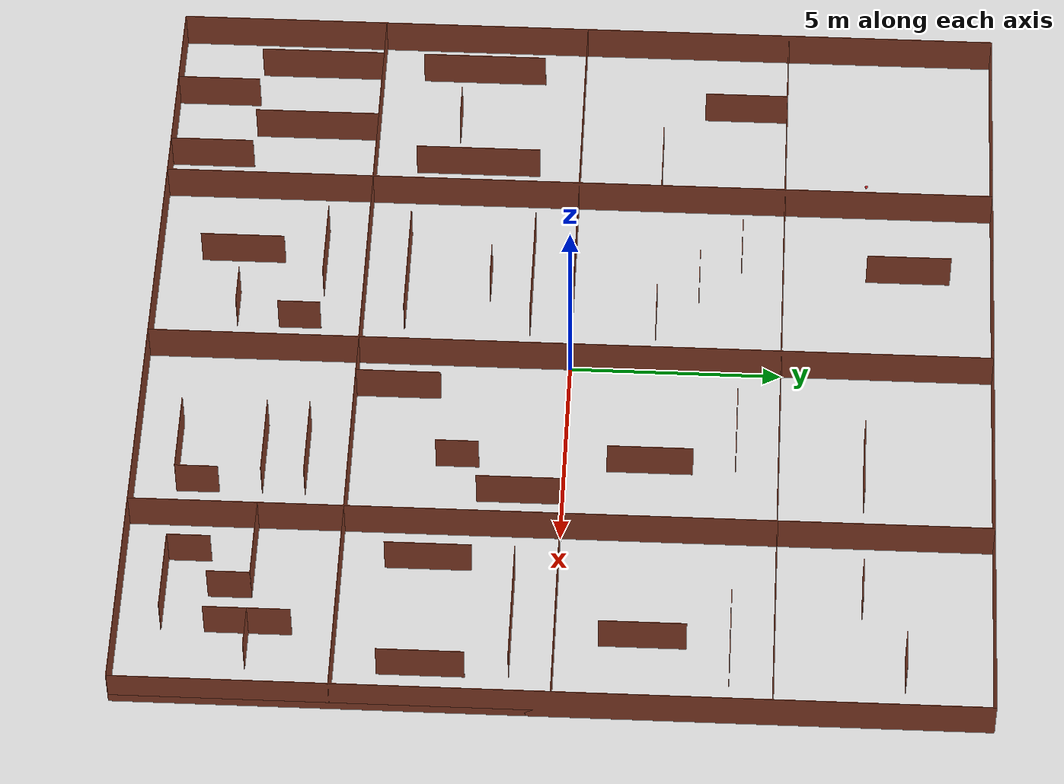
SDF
<sdf version="1.7">
 <world name="default">
  <light name="sun" type="directional">
   <pose>0 0 10 0 -0 0</pose>
   <diffuse>0.8 0.8 0.8 1</diffuse>
   <specular>0.2 0.2 0.2 1</specular>
   <attenuation>
    <range>1000</range>
    <constant>0.9</constant>
    <linear>0.01</linear>
    <quadratic>0.001</quadratic>
   </attenuation>
   <direction>-0.5 0.1 -0.9</direction>
   <spot><inner_angle>0</inner_angle><outer_angle>0</outer_angle><falloff>0</falloff></spot>
  </light>
  <model name="ground_plane">
   <static>1</static>
   <link name="link">
    <collision name="collision">
     <geometry><plane><normal>0 0 1</normal><size>100 100</size></plane></geometry>
     <surface>
      <contact><collide_bitmask>65535</collide_bitmask></contact>
      <friction><ode><mu>100</mu><mu2>50</mu2></ode></friction>
     </surface>
    </collision>
    <visual name="visual">
     <cast_shadows>0</cast_shadows>
     <geometry><plane><normal>0 0 1</normal><size>100 100</size></plane></geometry>
     <material>
      <script><uri>file://media/materials/scripts/gazebo.material</uri><name>Gazebo/Grey</name></script>
     </material>
    </visual>
   </link>
  </model>
  <gravity>0 0 -9.8</gravity>
  <magnetic_field>6e-06 2.3e-05 -4.2e-05</magnetic_field>
  <atmosphere type="adiabatic"/>
  <physics type="ode">
   <max_step_size>0.001</max_step_size>
   <real_time_factor>1</real_time_factor>
   <real_time_update_rate>1000</real_time_update_rate>
  </physics>
  <scene><ambient>0.4 0.4 0.4 1</ambient><background>0.7 0.7 0.7 1</background><shadows>1</shadows></scene>
  <spherical_coordinates>
   <surface_model>EARTH_WGS84</surface_model>
   <latitude_deg>0</latitude_deg>
   <longitude_deg>0</longitude_deg>
   <elevation>0</elevation>
   <heading_deg>0</heading_deg>
  </spherical_coordinates>
  <model name="cur_1.0">
   <link name="Wall_101">
    <collision name="Wall_101_Collision">
     <geometry><box><size>0.01 0.01 1</size></box></geometry>
     <pose>0 0 0.5 0 -0 0</pose>
    </collision>
    <visual name="Wall_101_Visual">
     <pose>0 0 0.5 0 -0 0</pose>
     <geometry><box><size>0.01 0.01 1</size></box></geometry>
     <material>
      <script><uri>file://media/materials/scripts/gazebo.material</uri><name>Gazebo/Bricks</name></script>
      <ambient>1 1 1 1</ambient>
     </material>
     <meta><layer>0</layer></meta>
    </visual>
    <pose>2 -9 0 0 -0 0</pose>
   </link>
   <link name="Wall_109">
    <collision name="Wall_109_Collision">
     <geometry><box><size>3.01 0.01 1</size></box></geometry>
     <pose>0 0 0.5 0 -0 0</pose>
    </collision>
    <visual name="Wall_109_Visual">
     <pose>0 0 0.5 0 -0 0</pose>
     <geometry><box><size>3.01 0.01 1</size></box></geometry>
     <material>
      <script><uri>file://media/materials/scripts/gazebo.material</uri><name>Gazebo/Bricks</name></script>
      <ambient>1 1 1 1</ambient>
     </material>
     <meta><layer>0</layer></meta>
    </visual>
    <pose>7.5 -1 0 0 -0 0</pose>
   </link>
   <link name="Wall_113">
    <collision name="Wall_113_Collision">
     <geometry><box><size>2.01 0.01 1</size></box></geometry>
     <pose>0 0 0.5 0 -0 0</pose>
    </collision>
    <visual name="Wall_113_Visual">
     <pose>0 0 0.5 0 -0 0</pose>
     <geometry><box><size>2.01 0.01 1</size></box></geometry>
     <material>
      <script><uri>file://media/materials/scripts/gazebo.material</uri><name>Gazebo/Bricks</name></script>
      <ambient>1 1 1 1</ambient>
     </material>
     <meta><layer>0</layer></meta>
    </visual>
    <pose>1 -4 0 0 -0 -1.5708</pose>
   </link>
   <link name="Wall_115">
    <collision name="Wall_115_Collision">
     <geometry><box><size>1.01 0.01 1</size></box></geometry>
     <pose>0 0 0.5 0 -0 0</pose>
    </collision>
    <visual name="Wall_115_Visual">
     <pose>0 0 0.5 0 -0 0</pose>
     <geometry><box><size>1.01 0.01 1</size></box></geometry>
     <material>
      <script><uri>file://media/materials/scripts/gazebo.material</uri><name>Gazebo/Bricks</name></script>
      <ambient>1 1 1 1</ambient>
     </material>
     <meta><layer>0</layer></meta>
    </visual>
    <pose>3 -2.5 0 0 -0 -1.5708</pose>
   </link>
   <link name="Wall_117">
    <collision name="Wall_117_Collision">
     <geometry><box><size>2.01 0.01 1</size></box></geometry>
     <pose>0 0 0.5 0 -0 0</pose>
    </collision>
    <visual name="Wall_117_Visual">
     <pose>0 0 0.5 0 -0 0</pose>
     <geometry><box><size>2.01 0.01 1</size></box></geometry>
     <material>
      <script><uri>file://media/materials/scripts/gazebo.material</uri><name>Gazebo/Bricks</name></script>
      <ambient>1 1 1 1</ambient>
     </material>
     <meta><layer>0</layer></meta>
    </visual>
    <pose>4 -1 0 0 -0 -1.5708</pose>
   </link>
   <link name="Wall_122">
    <collision name="Wall_122_Collision">
     <geometry><box><size>2.01 0.01 1</size></box></geometry>
     <pose>0 0 0.5 0 -0 0</pose>
    </collision>
    <visual name="Wall_122_Visual">
     <pose>0 0 0.5 0 -0 0</pose>
     <geometry><box><size>2.01 0.01 1</size></box></geometry>
     <material>
      <script><uri>file://media/materials/scripts/gazebo.material</uri><name>Gazebo/Bricks</name></script>
      <ambient>1 1 1 1</ambient>
     </material>
     <meta><layer>0</layer></meta>
    </visual>
    <pose>-8 -9 0 0 -0 -1.5708</pose>
   </link>
   <link name="Wall_125">
    <collision name="Wall_125_Collision">
     <geometry><box><size>3.01 0.01 1</size></box></geometry>
     <pose>0 0 0.5 0 -0 0</pose>
    </collision>
    <visual name="Wall_125_Visual">
     <pose>0 0 0.5 0 -0 0</pose>
     <geometry><box><size>3.01 0.01 1</size></box></geometry>
     <material>
      <script><uri>file://media/materials/scripts/gazebo.material</uri><name>Gazebo/Bricks</name></script>
      <ambient>1 1 1 1</ambient>
     </material>
     <meta><layer>0</layer></meta>
    </visual>
    <pose>-7 -6.5 0 0 -0 -1.5708</pose>
   </link>
   <link name="Wall_127">
    <collision name="Wall_127_Collision">
     <geometry><box><size>2.01 0.01 1</size></box></geometry>
     <pose>0 0 0.5 0 -0 0</pose>
    </collision>
    <visual name="Wall_127_Visual">
     <pose>0 0 0.5 0 -0 0</pose>
     <geometry><box><size>2.01 0.01 1</size></box></geometry>
     <material>
      <script><uri>file://media/materials/scripts/gazebo.material</uri><name>Gazebo/Bricks</name></script>
      <ambient>1 1 1 1</ambient>
     </material>
     <meta><layer>0</layer></meta>
    </visual>
    <pose>-6 -9 0 0 -0 -1.5708</pose>
   </link>
   <link name="Wall_13">
    <collision name="Wall_13_Collision">
     <geometry><box><size>20.01 0.01 1</size></box></geometry>
     <pose>0 0 0.5 0 -0 0</pose>
    </collision>
    <visual name="Wall_13_Visual">
     <pose>0 0 0.5 0 -0 0</pose>
     <geometry><box><size>20.01 0.01 1</size></box></geometry>
     <material>
      <script><uri>file://media/materials/scripts/gazebo.material</uri><name>Gazebo/Bricks</name></script>
      <ambient>1 1 1 1</ambient>
     </material>
     <meta><layer>0</layer></meta>
    </visual>
    <pose>-5 0 0 0 -0 -1.5708</pose>
   </link>
   <link name="Wall_133">
    <collision name="Wall_133_Collision">
     <geometry><box><size>3.01 0.01 1</size></box></geometry>
     <pose>0 0 0.5 0 -0 0</pose>
    </collision>
    <visual name="Wall_133_Visual">
     <pose>0 0 0.5 0 -0 0</pose>
     <geometry><box><size>3.01 0.01 1</size></box></geometry>
     <material>
      <script><uri>file://media/materials/scripts/gazebo.material</uri><name>Gazebo/Bricks</name></script>
      <ambient>1 1 1 1</ambient>
     </material>
     <meta><layer>0</layer></meta>
    </visual>
    <pose>-9 -2.5 0 0 -0 1.5708</pose>
   </link>
   <link name="Wall_135">
    <collision name="Wall_135_Collision">
     <geometry><box><size>1.01 0.01 1</size></box></geometry>
     <pose>0 0 0.5 0 -0 0</pose>
    </collision>
    <visual name="Wall_135_Visual">
     <pose>0 0 0.5 0 -0 0</pose>
     <geometry><box><size>1.01 0.01 1</size></box></geometry>
     <material>
      <script><uri>file://media/materials/scripts/gazebo.material</uri><name>Gazebo/Bricks</name></script>
      <ambient>1 1 1 1</ambient>
     </material>
     <meta><layer>0</layer></meta>
    </visual>
    <pose>-7.5 -3 0 0 -0 0</pose>
   </link>
   <link name="Wall_137">
    <collision name="Wall_137_Collision">
     <geometry><box><size>3.01 0.01 1</size></box></geometry>
     <pose>0 0 0.5 0 -0 0</pose>
    </collision>
    <visual name="Wall_137_Visual">
     <pose>0 0 0.5 0 -0 0</pose>
     <geometry><box><size>3.01 0.01 1</size></box></geometry>
     <material>
      <script><uri>file://media/materials/scripts/gazebo.material</uri><name>Gazebo/Bricks</name></script>
      <ambient>1 1 1 1</ambient>
     </material>
     <meta><layer>0</layer></meta>
    </visual>
    <pose>-6 -2.5 0 0 -0 -1.5708</pose>
   </link>
   <link name="Wall_139">
    <collision name="Wall_139_Collision">
     <geometry><box><size>3.01 0.01 1</size></box></geometry>
     <pose>0 0 0.5 0 -0 0</pose>
    </collision>
    <visual name="Wall_139_Visual">
     <pose>0 0 0.5 0 -0 0</pose>
     <geometry><box><size>3.01 0.01 1</size></box></geometry>
     <material>
      <script><uri>file://media/materials/scripts/gazebo.material</uri><name>Gazebo/Bricks</name></script>
      <ambient>1 1 1 1</ambient>
     </material>
     <meta><layer>0</layer></meta>
    </visual>
    <pose>-2.5 -1 0 0 -0 0</pose>
   </link>
   <link name="Wall_143">
    <collision name="Wall_143_Collision">
     <geometry><box><size>1.01 0.01 1</size></box></geometry>
     <pose>0 0 0.5 0 -0 0</pose>
    </collision>
    <visual name="Wall_143_Visual">
     <pose>0 0 0.5 0 -0 0</pose>
     <geometry><box><size>1.01 0.01 1</size></box></geometry>
     <material>
      <script><uri>file://media/materials/scripts/gazebo.material</uri><name>Gazebo/Bricks</name></script>
      <ambient>1 1 1 1</ambient>
     </material>
     <meta><layer>0</layer></meta>
    </visual>
    <pose>-2.5 -2 0 0 -0 0</pose>
   </link>
   <link name="Wall_145">
    <collision name="Wall_145_Collision">
     <geometry><box><size>3.01 0.01 1</size></box></geometry>
     <pose>0 0 0.5 0 -0 0</pose>
    </collision>
    <visual name="Wall_145_Visual">
     <pose>0 0 0.5 0 -0 0</pose>
     <geometry><box><size>3.01 0.01 1</size></box></geometry>
     <material>
      <script><uri>file://media/materials/scripts/gazebo.material</uri><name>Gazebo/Bricks</name></script>
      <ambient>1 1 1 1</ambient>
     </material>
     <meta><layer>0</layer></meta>
    </visual>
    <pose>-2.5 -4 0 0 -0 0</pose>
   </link>
   <link name="Wall_147">
    <collision name="Wall_147_Collision">
     <geometry><box><size>2.01 0.01 1</size></box></geometry>
     <pose>0 0 0.5 0 -0 0</pose>
    </collision>
    <visual name="Wall_147_Visual">
     <pose>0 0 0.5 0 -0 0</pose>
     <geometry><box><size>2.01 0.01 1</size></box></geometry>
     <material>
      <script><uri>file://media/materials/scripts/gazebo.material</uri><name>Gazebo/Bricks</name></script>
      <ambient>1 1 1 1</ambient>
     </material>
     <meta><layer>0</layer></meta>
    </visual>
    <pose>6 -3 0 0 -0 -1.5708</pose>
   </link>
   <link name="Wall_149">
    <collision name="Wall_149_Collision">
     <geometry><box><size>2.01 0.01 1</size></box></geometry>
     <pose>0 0 0.5 0 -0 0</pose>
    </collision>
    <visual name="Wall_149_Visual">
     <pose>0 0 0.5 0 -0 0</pose>
     <geometry><box><size>2.01 0.01 1</size></box></geometry>
     <material>
      <script><uri>file://media/materials/scripts/gazebo.material</uri><name>Gazebo/Bricks</name></script>
      <ambient>1 1 1 1</ambient>
     </material>
     <meta><layer>0</layer></meta>
    </visual>
    <pose>9 -3 0 0 -0 -1.5708</pose>
   </link>
   <link name="Wall_15">
    <collision name="Wall_15_Collision">
     <geometry><box><size>20.01 0.01 1</size></box></geometry>
     <pose>0 0 0.5 0 -0 0</pose>
    </collision>
    <visual name="Wall_15_Visual">
     <pose>0 0 0.5 0 -0 0</pose>
     <geometry><box><size>20.01 0.01 1</size></box></geometry>
     <material>
      <script><uri>file://media/materials/scripts/gazebo.material</uri><name>Gazebo/Bricks</name></script>
      <ambient>1 1 1 1</ambient>
     </material>
     <meta><layer>0</layer></meta>
    </visual>
    <pose>0 0 0 0 -0 -1.5708</pose>
   </link>
   <link name="Wall_151">
    <collision name="Wall_151_Collision">
     <geometry><box><size>2.01 0.01 1</size></box></geometry>
     <pose>0 0 0.5 0 -0 0</pose>
    </collision>
    <visual name="Wall_151_Visual">
     <pose>0 0 0.5 0 -0 0</pose>
     <geometry><box><size>2.01 0.01 1</size></box></geometry>
     <material>
      <script><uri>file://media/materials/scripts/gazebo.material</uri><name>Gazebo/Bricks</name></script>
      <ambient>1 1 1 1</ambient>
     </material>
     <meta><layer>0</layer></meta>
    </visual>
    <pose>8 2 0 0 -0 1.5708</pose>
   </link>
   <link name="Wall_157">
    <collision name="Wall_157_Collision">
     <geometry><box><size>2.01 0.01 1</size></box></geometry>
     <pose>0 0 0.5 0 -0 0</pose>
    </collision>
    <visual name="Wall_157_Visual">
     <pose>0 0 0.5 0 -0 0</pose>
     <geometry><box><size>2.01 0.01 1</size></box></geometry>
     <material>
      <script><uri>file://media/materials/scripts/gazebo.material</uri><name>Gazebo/Bricks</name></script>
      <ambient>1 1 1 1</ambient>
     </material>
     <meta><layer>0</layer></meta>
    </visual>
    <pose>3 7 0 0 -0 0</pose>
   </link>
   <link name="Wall_159">
    <collision name="Wall_159_Collision">
     <geometry><box><size>2.01 0.01 1</size></box></geometry>
     <pose>0 0 0.5 0 -0 0</pose>
    </collision>
    <visual name="Wall_159_Visual">
     <pose>0 0 0.5 0 -0 0</pose>
     <geometry><box><size>2.01 0.01 1</size></box></geometry>
     <material>
      <script><uri>file://media/materials/scripts/gazebo.material</uri><name>Gazebo/Bricks</name></script>
      <ambient>1 1 1 1</ambient>
     </material>
     <meta><layer>0</layer></meta>
    </visual>
    <pose>2 4 0 0 -0 0</pose>
   </link>
   <link name="Wall_162">
    <collision name="Wall_162_Collision">
     <geometry><box><size>2.01 0.01 1</size></box></geometry>
     <pose>0 0 0.5 0 -0 0</pose>
    </collision>
    <visual name="Wall_162_Visual">
     <pose>0 0 0.5 0 -0 0</pose>
     <geometry><box><size>2.01 0.01 1</size></box></geometry>
     <material>
      <script><uri>file://media/materials/scripts/gazebo.material</uri><name>Gazebo/Bricks</name></script>
      <ambient>1 1 1 1</ambient>
     </material>
     <meta><layer>0</layer></meta>
    </visual>
    <pose>-8 4 0 0 -0 -1.5708</pose>
   </link>
   <link name="Wall_165">
    <collision name="Wall_165_Collision">
     <geometry><box><size>2.01 0.01 1</size></box></geometry>
     <pose>0 0 0.5 0 -0 0</pose>
    </collision>
    <visual name="Wall_165_Visual">
     <pose>0 0 0.5 0 -0 0</pose>
     <geometry><box><size>2.01 0.01 1</size></box></geometry>
     <material>
      <script><uri>file://media/materials/scripts/gazebo.material</uri><name>Gazebo/Bricks</name></script>
      <ambient>1 1 1 1</ambient>
     </material>
     <meta><layer>0</layer></meta>
    </visual>
    <pose>-6 2 0 0 -0 0</pose>
   </link>
   <link name="Wall_169">
    <collision name="Wall_169_Collision">
     <geometry><box><size>1.01 0.01 1</size></box></geometry>
     <pose>0 0 0.5 0 -0 0</pose>
    </collision>
    <visual name="Wall_169_Visual">
     <pose>0 0 0.5 0 -0 0</pose>
     <geometry><box><size>1.01 0.01 1</size></box></geometry>
     <material>
      <script><uri>file://media/materials/scripts/gazebo.material</uri><name>Gazebo/Bricks</name></script>
      <ambient>1 1 1 1</ambient>
     </material>
     <meta><layer>0</layer></meta>
    </visual>
    <pose>-3.5 4 0 0 -0 0</pose>
   </link>
   <link name="Wall_17">
    <collision name="Wall_17_Collision">
     <geometry><box><size>20.01 0.01 1</size></box></geometry>
     <pose>0 0 0.5 0 -0 0</pose>
    </collision>
    <visual name="Wall_17_Visual">
     <pose>0 0 0.5 0 -0 0</pose>
     <geometry><box><size>20.01 0.01 1</size></box></geometry>
     <material>
      <script><uri>file://media/materials/scripts/gazebo.material</uri><name>Gazebo/Bricks</name></script>
      <ambient>1 1 1 1</ambient>
     </material>
     <meta><layer>0</layer></meta>
    </visual>
    <pose>5 0 0 0 -0 -1.5708</pose>
   </link>
   <link name="Wall_173">
    <collision name="Wall_173_Collision">
     <geometry><box><size>1.01 0.01 1</size></box></geometry>
     <pose>0 0 0.5 0 -0 0</pose>
    </collision>
    <visual name="Wall_173_Visual">
     <pose>0 0 0.5 0 -0 0</pose>
     <geometry><box><size>1.01 0.01 1</size></box></geometry>
     <material>
      <script><uri>file://media/materials/scripts/gazebo.material</uri><name>Gazebo/Bricks</name></script>
      <ambient>1 1 1 1</ambient>
     </material>
     <meta><layer>0</layer></meta>
    </visual>
    <pose>8.5 8 0 0 -0 0</pose>
   </link>
   <link name="Wall_175">
    <collision name="Wall_175_Collision">
     <geometry><box><size>1.01 0.01 1</size></box></geometry>
     <pose>0 0 0.5 0 -0 0</pose>
    </collision>
    <visual name="Wall_175_Visual">
     <pose>0 0 0.5 0 -0 0</pose>
     <geometry><box><size>1.01 0.01 1</size></box></geometry>
     <material>
      <script><uri>file://media/materials/scripts/gazebo.material</uri><name>Gazebo/Bricks</name></script>
      <ambient>1 1 1 1</ambient>
     </material>
     <meta><layer>0</layer></meta>
    </visual>
    <pose>-2.5 3 0 0 -0 0</pose>
   </link>
   <link name="Wall_177">
    <collision name="Wall_177_Collision">
     <geometry><box><size>1.01 0.01 1</size></box></geometry>
     <pose>0 0 0.5 0 -0 0</pose>
    </collision>
    <visual name="Wall_177_Visual">
     <pose>0 0 0.5 0 -0 0</pose>
     <geometry><box><size>1.01 0.01 1</size></box></geometry>
     <material>
      <script><uri>file://media/materials/scripts/gazebo.material</uri><name>Gazebo/Bricks</name></script>
      <ambient>1 1 1 1</ambient>
     </material>
     <meta><layer>0</layer></meta>
    </visual>
    <pose>-1.5 2 0 0 -0 0</pose>
   </link>
   <link name="Wall_179">
    <collision name="Wall_179_Collision">
     <geometry><box><size>2.01 0.01 1</size></box></geometry>
     <pose>0 0 0.5 0 -0 0</pose>
    </collision>
    <visual name="Wall_179_Visual">
     <pose>0 0 0.5 0 -0 0</pose>
     <geometry><box><size>2.01 0.01 1</size></box></geometry>
     <material>
      <script><uri>file://media/materials/scripts/gazebo.material</uri><name>Gazebo/Bricks</name></script>
      <ambient>1 1 1 1</ambient>
     </material>
     <meta><layer>0</layer></meta>
    </visual>
    <pose>3 2 0 0 -0 1.5708</pose>
   </link>
   <link name="Wall_185">
    <collision name="Wall_185_Collision">
     <geometry><box><size>2.01 0.01 1</size></box></geometry>
     <pose>0 0 0.5 0 -0 0</pose>
    </collision>
    <visual name="Wall_185_Visual">
     <pose>0 0 0.5 0 -0 0</pose>
     <geometry><box><size>2.01 0.01 1</size></box></geometry>
     <material>
      <script><uri>file://media/materials/scripts/gazebo.material</uri><name>Gazebo/Bricks</name></script>
      <ambient>1 1 1 1</ambient>
     </material>
     <meta><layer>0</layer></meta>
    </visual>
    <pose>3 -6 0 0 -0 0</pose>
   </link>
   <link name="Wall_187">
    <collision name="Wall_187_Collision">
     <geometry><box><size>2.01 0.01 1</size></box></geometry>
     <pose>0 0 0.5 0 -0 0</pose>
    </collision>
    <visual name="Wall_187_Visual">
     <pose>0 0 0.5 0 -0 0</pose>
     <geometry><box><size>2.01 0.01 1</size></box></geometry>
     <material>
      <script><uri>file://media/materials/scripts/gazebo.material</uri><name>Gazebo/Bricks</name></script>
      <ambient>1 1 1 1</ambient>
     </material>
     <meta><layer>0</layer></meta>
    </visual>
    <pose>3 -9 0 0 -0 0</pose>
   </link>
   <link name="Wall_24">
    <collision name="Wall_24_Collision">
     <geometry><box><size>20.01 0.01 1</size></box></geometry>
     <pose>0 0 0.5 0 -0 0</pose>
    </collision>
    <visual name="Wall_24_Visual">
     <pose>0 0 0.5 0 -0 0</pose>
     <geometry><box><size>20.01 0.01 1</size></box></geometry>
     <material>
      <script><uri>file://media/materials/scripts/gazebo.material</uri><name>Gazebo/Bricks</name></script>
      <ambient>1 1 1 1</ambient>
     </material>
     <meta><layer>0</layer></meta>
    </visual>
    <pose>0 10 0 0 -0 0</pose>
   </link>
   <link name="Wall_33">
    <collision name="Wall_33_Collision">
     <geometry><box><size>20.01 0.01 1</size></box></geometry>
     <pose>0 0 0.5 0 -0 0</pose>
    </collision>
    <visual name="Wall_33_Visual">
     <pose>0 0 0.5 0 -0 0</pose>
     <geometry><box><size>20.01 0.01 1</size></box></geometry>
     <material>
      <script><uri>file://media/materials/scripts/gazebo.material</uri><name>Gazebo/Bricks</name></script>
      <ambient>1 1 1 1</ambient>
     </material>
     <meta><layer>0</layer></meta>
    </visual>
    <pose>0 5 0 0 -0 3.14159</pose>
   </link>
   <link name="Wall_35">
    <collision name="Wall_35_Collision">
     <geometry><box><size>20.01 0.01 1</size></box></geometry>
     <pose>0 0 0.5 0 -0 0</pose>
    </collision>
    <visual name="Wall_35_Visual">
     <pose>0 0 0.5 0 -0 0</pose>
     <geometry><box><size>20.01 0.01 1</size></box></geometry>
     <material>
      <script><uri>file://media/materials/scripts/gazebo.material</uri><name>Gazebo/Bricks</name></script>
      <ambient>1 1 1 1</ambient>
     </material>
     <meta><layer>0</layer></meta>
    </visual>
    <pose>0 0 0 0 -0 3.14159</pose>
   </link>
   <link name="Wall_37">
    <collision name="Wall_37_Collision">
     <geometry><box><size>20.01 0.01 1</size></box></geometry>
     <pose>0 0 0.5 0 -0 0</pose>
    </collision>
    <visual name="Wall_37_Visual">
     <pose>0 0 0.5 0 -0 0</pose>
     <geometry><box><size>20.01 0.01 1</size></box></geometry>
     <material>
      <script><uri>file://media/materials/scripts/gazebo.material</uri><name>Gazebo/Bricks</name></script>
      <ambient>1 1 1 1</ambient>
     </material>
     <meta><layer>0</layer></meta>
    </visual>
    <pose>0 -5 0 0 -0 0</pose>
   </link>
   <link name="Wall_45">
    <collision name="Wall_45_Collision">
     <geometry><box><size>2.01 0.01 1</size></box></geometry>
     <pose>0 0 0.5 0 -0 0</pose>
    </collision>
    <visual name="Wall_45_Visual">
     <pose>0 0 0.5 0 -0 0</pose>
     <geometry><box><size>2.01 0.01 1</size></box></geometry>
     <material>
      <script><uri>file://media/materials/scripts/gazebo.material</uri><name>Gazebo/Bricks</name></script>
      <ambient>1 1 1 1</ambient>
     </material>
     <meta><layer>0</layer></meta>
    </visual>
    <pose>8 4 0 0 -0 0</pose>
   </link>
   <link name="Wall_6">
    <collision name="Wall_6_Collision">
     <geometry><box><size>20.01 0.01 1</size></box></geometry>
     <pose>0 0 0.5 0 -0 0</pose>
    </collision>
    <visual name="Wall_6_Visual">
     <pose>0 0 0.5 0 -0 0</pose>
     <geometry><box><size>20.01 0.01 1</size></box></geometry>
     <material>
      <script><uri>file://media/materials/scripts/gazebo.material</uri><name>Gazebo/Bricks</name></script>
      <ambient>1 1 1 1</ambient>
     </material>
     <meta><layer>0</layer></meta>
    </visual>
    <pose>-10 0 0 0 -0 -1.5708</pose>
   </link>
   <link name="Wall_63">
    <collision name="Wall_63_Collision">
     <geometry><box><size>2.01 0.01 1</size></box></geometry>
     <pose>0 0 0.5 0 -0 0</pose>
    </collision>
    <visual name="Wall_63_Visual">
     <pose>0 0 0.5 0 -0 0</pose>
     <geometry><box><size>2.01 0.01 1</size></box></geometry>
     <material>
      <script><uri>file://media/materials/scripts/gazebo.material</uri><name>Gazebo/Bricks</name></script>
      <ambient>1 1 1 1</ambient>
     </material>
     <meta><layer>0</layer></meta>
    </visual>
    <pose>-3 8 0 0 -0 1.5708</pose>
   </link>
   <link name="Wall_67">
    <collision name="Wall_67_Collision">
     <geometry><box><size>1.01 0.01 1</size></box></geometry>
     <pose>0 0 0.5 0 -0 0</pose>
    </collision>
    <visual name="Wall_67_Visual">
     <pose>0 0 0.5 0 -0 0</pose>
     <geometry><box><size>1.01 0.01 1</size></box></geometry>
     <material>
      <script><uri>file://media/materials/scripts/gazebo.material</uri><name>Gazebo/Bricks</name></script>
      <ambient>1 1 1 1</ambient>
     </material>
     <meta><layer>0</layer></meta>
    </visual>
    <pose>6.5 7 0 0 -0 0</pose>
   </link>
   <link name="Wall_69">
    <collision name="Wall_69_Collision">
     <geometry><box><size>3.01 0.01 1</size></box></geometry>
     <pose>0 0 0.5 0 -0 0</pose>
    </collision>
    <visual name="Wall_69_Visual">
     <pose>0 0 0.5 0 -0 0</pose>
     <geometry><box><size>3.01 0.01 1</size></box></geometry>
     <material>
      <script><uri>file://media/materials/scripts/gazebo.material</uri><name>Gazebo/Bricks</name></script>
      <ambient>1 1 1 1</ambient>
     </material>
     <meta><layer>0</layer></meta>
    </visual>
    <pose>-9 -6.5 0 0 -0 -1.5708</pose>
   </link>
   <link name="Wall_7">
    <collision name="Wall_7_Collision">
     <geometry><box><size>20.01 0.01 1</size></box></geometry>
     <pose>0 0 0.5 0 -0 0</pose>
    </collision>
    <visual name="Wall_7_Visual">
     <pose>0 0 0.5 0 -0 0</pose>
     <geometry><box><size>20.01 0.01 1</size></box></geometry>
     <material>
      <script><uri>file://media/materials/scripts/gazebo.material</uri><name>Gazebo/Bricks</name></script>
      <ambient>1 1 1 1</ambient>
     </material>
     <meta><layer>0</layer></meta>
    </visual>
    <pose>0 -10 0 0 -0 0</pose>
   </link>
   <link name="Wall_73">
    <collision name="Wall_73_Collision">
     <geometry><box><size>2.01 0.01 1</size></box></geometry>
     <pose>0 0 0.5 0 -0 0</pose>
    </collision>
    <visual name="Wall_73_Visual">
     <pose>0 0 0.5 0 -0 0</pose>
     <geometry><box><size>2.01 0.01 1</size></box></geometry>
     <material>
      <script><uri>file://media/materials/scripts/gazebo.material</uri><name>Gazebo/Bricks</name></script>
      <ambient>1 1 1 1</ambient>
     </material>
     <meta><layer>0</layer></meta>
    </visual>
    <pose>-3 -6 0 0 -0 0</pose>
   </link>
   <link name="Wall_75">
    <collision name="Wall_75_Collision">
     <geometry><box><size>2.01 0.01 1</size></box></geometry>
     <pose>0 0 0.5 0 -0 0</pose>
    </collision>
    <visual name="Wall_75_Visual">
     <pose>0 0 0.5 0 -0 0</pose>
     <geometry><box><size>2.01 0.01 1</size></box></geometry>
     <material>
      <script><uri>file://media/materials/scripts/gazebo.material</uri><name>Gazebo/Bricks</name></script>
      <ambient>1 1 1 1</ambient>
     </material>
     <meta><layer>0</layer></meta>
    </visual>
    <pose>-3 -8 0 0 -0 -1.5708</pose>
   </link>
   <link name="Wall_77">
    <collision name="Wall_77_Collision">
     <geometry><box><size>1.01 0.01 1</size></box></geometry>
     <pose>0 0 0.5 0 -0 0</pose>
    </collision>
    <visual name="Wall_77_Visual">
     <pose>0 0 0.5 0 -0 0</pose>
     <geometry><box><size>1.01 0.01 1</size></box></geometry>
     <material>
      <script><uri>file://media/materials/scripts/gazebo.material</uri><name>Gazebo/Bricks</name></script>
      <ambient>1 1 1 1</ambient>
     </material>
     <meta><layer>0</layer></meta>
    </visual>
    <pose>-1.5 -8 0 0 -0 0</pose>
   </link>
   <link name="Wall_79">
    <collision name="Wall_79_Collision">
     <geometry><box><size>1.01 0.01 1</size></box></geometry>
     <pose>0 0 0.5 0 -0 0</pose>
    </collision>
    <visual name="Wall_79_Visual">
     <pose>0 0 0.5 0 -0 0</pose>
     <geometry><box><size>1.01 0.01 1</size></box></geometry>
     <material>
      <script><uri>file://media/materials/scripts/gazebo.material</uri><name>Gazebo/Bricks</name></script>
      <ambient>1 1 1 1</ambient>
     </material>
     <meta><layer>0</layer></meta>
    </visual>
    <pose>-1 -6.5 0 0 -0 -1.5708</pose>
   </link>
   <link name="Wall_8">
    <collision name="Wall_8_Collision">
     <geometry><box><size>20.01 0.01 0.25</size></box></geometry>
     <pose>0 0 0.125 0 -0 0</pose>
    </collision>
    <visual name="Wall_8_Visual">
     <pose>0 0 0.125 0 -0 0</pose>
     <geometry><box><size>20.01 0.01 0.25</size></box></geometry>
     <material>
      <script><uri>file://media/materials/scripts/gazebo.material</uri><name>Gazebo/Bricks</name></script>
      <ambient>1 1 1 1</ambient>
     </material>
     <meta><layer>0</layer></meta>
    </visual>
    <pose>10 0 0 0 -0 1.5708</pose>
   </link>
   <link name="Wall_82">
    <collision name="Wall_82_Collision">
     <geometry><box><size>0.01 0.01 1</size></box></geometry>
     <pose>0 0 0.5 0 -0 0</pose>
    </collision>
    <visual name="Wall_82_Visual">
     <pose>0 0 0.5 0 -0 0</pose>
     <geometry><box><size>0.01 0.01 1</size></box></geometry>
     <material>
      <script><uri>file://media/materials/scripts/gazebo.material</uri><name>Gazebo/Bricks</name></script>
      <ambient>1 1 1 1</ambient>
     </material>
     <meta><layer>0</layer></meta>
    </visual>
    <pose>2 -6 0 0 -0 0</pose>
   </link>
   <link name="Wall_85">
    <collision name="Wall_85_Collision">
     <geometry><box><size>1.01 0.01 1</size></box></geometry>
     <pose>0 0 0.5 0 -0 0</pose>
    </collision>
    <visual name="Wall_85_Visual">
     <pose>0 0 0.5 0 -0 0</pose>
     <geometry><box><size>1.01 0.01 1</size></box></geometry>
     <material>
      <script><uri>file://media/materials/scripts/gazebo.material</uri><name>Gazebo/Bricks</name></script>
      <ambient>1 1 1 1</ambient>
     </material>
     <meta><layer>0</layer></meta>
    </visual>
    <pose>4 -8.5 0 0 -0 1.5708</pose>
   </link>
   <link name="Wall_87">
    <collision name="Wall_87_Collision">
     <geometry><box><size>2.01 0.01 1</size></box></geometry>
     <pose>0 0 0.5 0 -0 0</pose>
    </collision>
    <visual name="Wall_87_Visual">
     <pose>0 0 0.5 0 -0 0</pose>
     <geometry><box><size>2.01 0.01 1</size></box></geometry>
     <material>
      <script><uri>file://media/materials/scripts/gazebo.material</uri><name>Gazebo/Bricks</name></script>
      <ambient>1 1 1 1</ambient>
     </material>
     <meta><layer>0</layer></meta>
    </visual>
    <pose>6 -7 0 0 -0 0</pose>
   </link>
   <link name="Wall_9">
    <collision name="Wall_9_Collision">
     <geometry><box><size>20.01 0.01 1</size></box></geometry>
     <pose>0 0 0.5 0 -0 0</pose>
    </collision>
    <visual name="Wall_9_Visual">
     <pose>0 0 0.5 0 -0 0</pose>
     <geometry><box><size>20.01 0.01 1</size></box></geometry>
     <material>
      <script><uri>file://media/materials/scripts/gazebo.material</uri><name>Gazebo/Bricks</name></script>
      <ambient>1 1 1 1</ambient>
     </material>
     <meta><layer>0</layer></meta>
    </visual>
    <pose>10 0 0 0 -0 -1.5708</pose>
   </link>
   <link name="Wall_90">
    <collision name="Wall_90_Collision">
     <geometry><box><size>1.01 0.01 1</size></box></geometry>
     <pose>0 0 0.5 0 -0 0</pose>
    </collision>
    <visual name="Wall_90_Visual">
     <pose>0 0 0.5 0 -0 0</pose>
     <geometry><box><size>1.01 0.01 1</size></box></geometry>
     <material>
      <script><uri>file://media/materials/scripts/gazebo.material</uri><name>Gazebo/Bricks</name></script>
      <ambient>1 1 1 1</ambient>
     </material>
     <meta><layer>0</layer></meta>
    </visual>
    <pose>7 -7.5 0 0 -0 -1.5708</pose>
   </link>
   <link name="Wall_92">
    <collision name="Wall_92_Collision">
     <geometry><box><size>1.01 0.01 1</size></box></geometry>
     <pose>0 0 0.5 0 -0 0</pose>
    </collision>
    <visual name="Wall_92_Visual">
     <pose>0 0 0.5 0 -0 0</pose>
     <geometry><box><size>1.01 0.01 1</size></box></geometry>
     <material>
      <script><uri>file://media/materials/scripts/gazebo.material</uri><name>Gazebo/Bricks</name></script>
      <ambient>1 1 1 1</ambient>
     </material>
     <meta><layer>0</layer></meta>
    </visual>
    <pose>6 -8.5 0 0 -0 -1.5708</pose>
   </link>
   <link name="Wall_93">
    <collision name="Wall_93_Collision">
     <geometry><box><size>2.01 0.01 1</size></box></geometry>
     <pose>0 0 0.5 0 -0 0</pose>
    </collision>
    <visual name="Wall_93_Visual">
     <pose>0 0 0.5 0 -0 0</pose>
     <geometry><box><size>2.01 0.01 1</size></box></geometry>
     <material>
      <script><uri>file://media/materials/scripts/gazebo.material</uri><name>Gazebo/Bricks</name></script>
      <ambient>1 1 1 1</ambient>
     </material>
     <meta><layer>0</layer></meta>
    </visual>
    <pose>7 -9 0 0 -0 0</pose>
   </link>
   <link name="Wall_95">
    <collision name="Wall_95_Collision">
     <geometry><box><size>2.01 0.01 1</size></box></geometry>
     <pose>0 0 0.5 0 -0 0</pose>
    </collision>
    <visual name="Wall_95_Visual">
     <pose>0 0 0.5 0 -0 0</pose>
     <geometry><box><size>2.01 0.01 1</size></box></geometry>
     <material>
      <script><uri>file://media/materials/scripts/gazebo.material</uri><name>Gazebo/Bricks</name></script>
      <ambient>1 1 1 1</ambient>
     </material>
     <meta><layer>0</layer></meta>
    </visual>
    <pose>8 -7 0 0 -0 -1.5708</pose>
   </link>
   <link name="Wall_97">
    <collision name="Wall_97_Collision">
     <geometry><box><size>1.01 0.01 1</size></box></geometry>
     <pose>0 0 0.5 0 -0 0</pose>
    </collision>
    <visual name="Wall_97_Visual">
     <pose>0 0 0.5 0 -0 0</pose>
     <geometry><box><size>1.01 0.01 1</size></box></geometry>
     <material>
      <script><uri>file://media/materials/scripts/gazebo.material</uri><name>Gazebo/Bricks</name></script>
      <ambient>1 1 1 1</ambient>
     </material>
     <meta><layer>0</layer></meta>
    </visual>
    <pose>8.5 -7 0 0 -0 0</pose>
   </link>
   <link name="Wall_99">
    <collision name="Wall_99_Collision">
     <geometry><box><size>2.01 0.01 1</size></box></geometry>
     <pose>0 0 0.5 0 -0 0</pose>
    </collision>
    <visual name="Wall_99_Visual">
     <pose>0 0 0.5 0 -0 0</pose>
     <geometry><box><size>2.01 0.01 1</size></box></geometry>
     <material>
      <script><uri>file://media/materials/scripts/gazebo.material</uri><name>Gazebo/Bricks</name></script>
      <ambient>1 1 1 1</ambient>
     </material>
     <meta><layer>0</layer></meta>
    </visual>
    <pose>3 -7 0 0 -0 0</pose>
   </link>
   <static>1</static>
  </model>
  <model name="cricket_ball">
   <link name="link">
    <pose>0 0 0.0375 0 -0 0</pose>
    <inertial>
     <mass>0.1467</mass>
     <inertia>
      <ixx>8.25187e-05</ixx>
      <ixy>0</ixy>
      <ixz>0</ixz>
      <iyy>8.25187e-05</iyy>
      <iyz>0</iyz>
      <izz>8.25187e-05</izz>
     </inertia>
    </inertial>
    <collision name="collision">
     <geometry><sphere><radius>0.0375</radius></sphere></geometry>
     <surface>
      <contact>
       <poissons_ratio>0.347</poissons_ratio>
       <elastic_modulus>8.8e+09</elastic_modulus>
       <ode><kp>100000</kp><kd>100</kd><max_vel>100</max_vel><min_depth>0.001</min_depth></ode>
      </contact>
      <friction>
       <torsional>
        <coefficient>1</coefficient>
        <use_patch_radius>0</use_patch_radius>
        <surface_radius>0.01</surface_radius>
       </torsional>
      </friction>
     </surface>
    </collision>
    <visual name="visual">
     <geometry><sphere><radius>0.0375</radius></sphere></geometry>
     <material>
      <script><uri>file://media/materials/scripts/gazebo.material</uri><name>Gazebo/Red</name></script>
     </material>
    </visual>
    <velocity_decay><linear>0</linear><angular>0.005</angular></velocity_decay>
   </link>
   <pose>-5.97884 6.98881 -0.001014 0 -0 0</pose>
  </model>
 </world>
</sdf>
